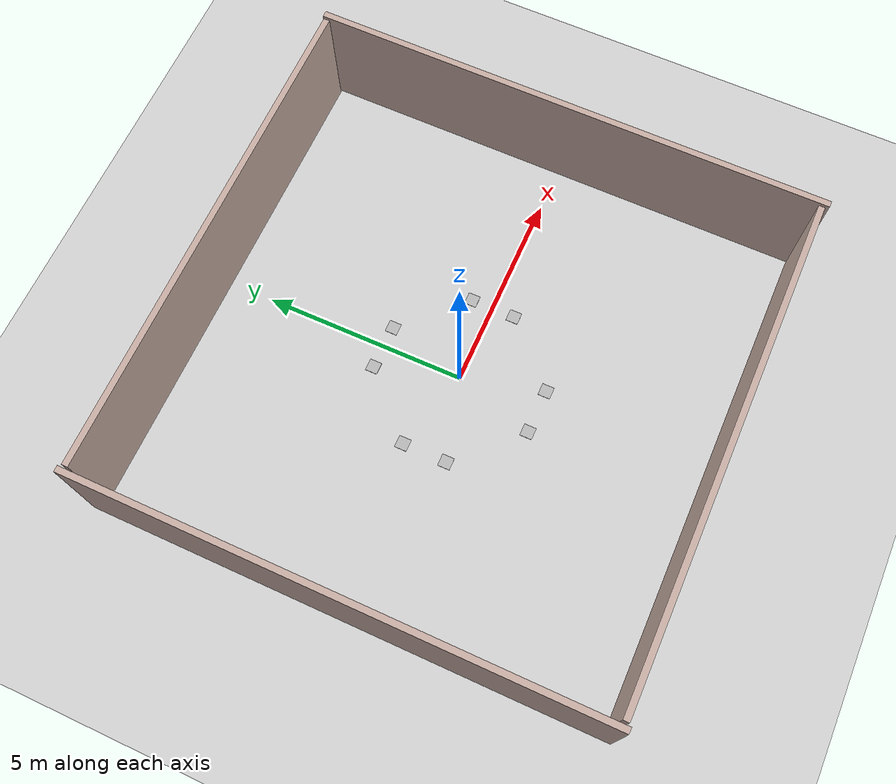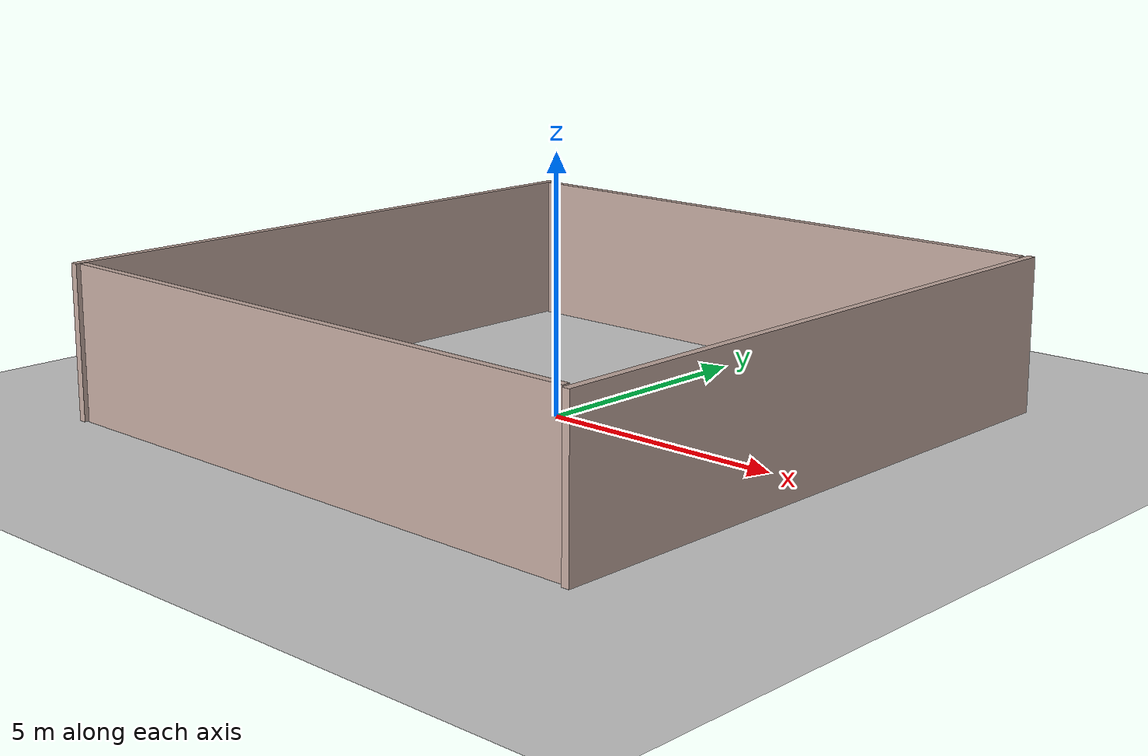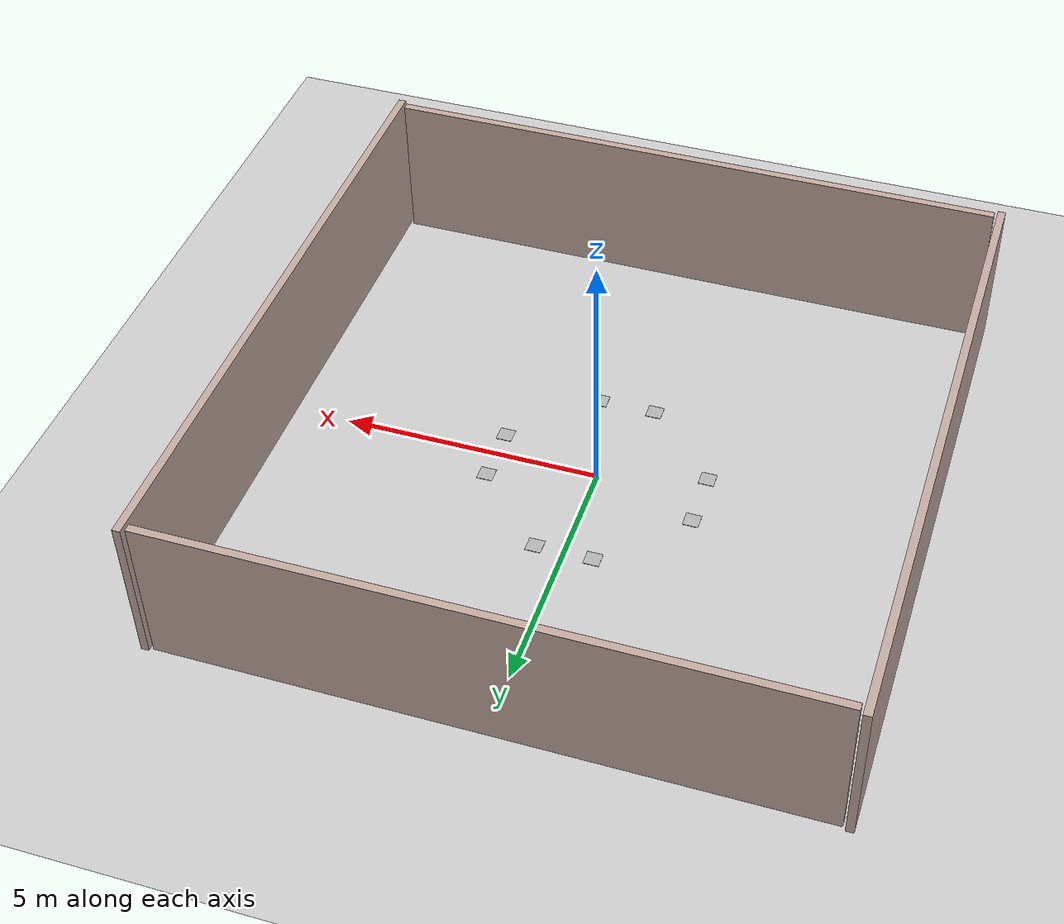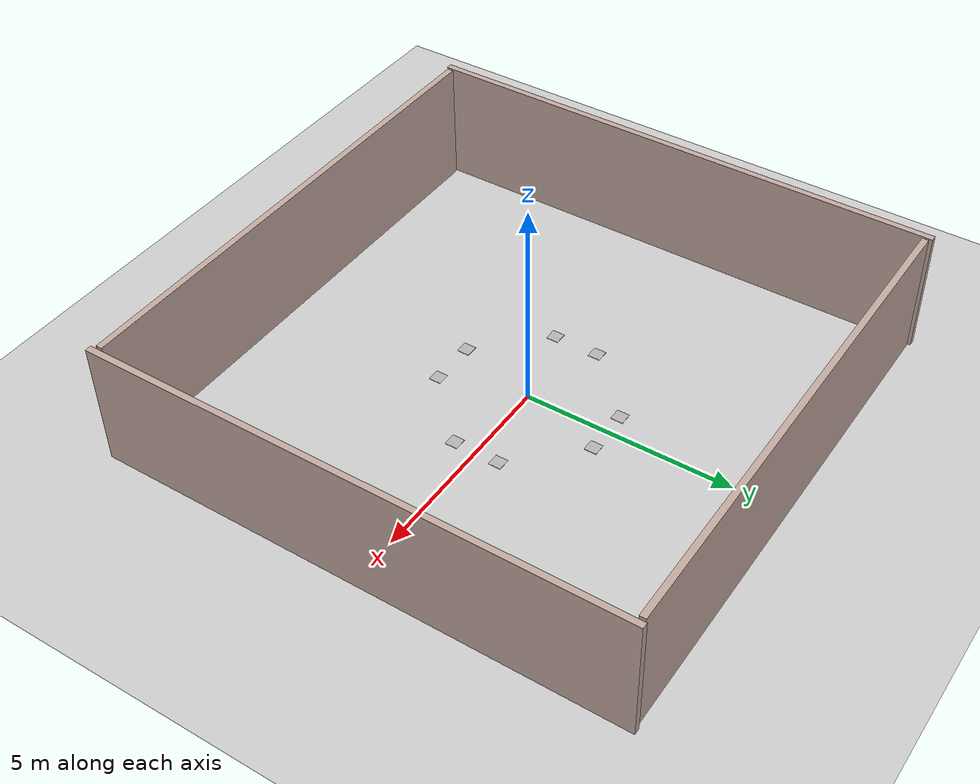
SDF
<sdf version="1.6">
 <world name="default">
  <include><uri>model://ApriltagID60</uri><pose>2 -0.55 0 0 1.5713 1.5713</pose></include>
  <include><uri>model://ApriltagID61</uri><pose>2 0.55 0 0 1.5713 1.5713</pose></include>
  <include><uri>model://ApriltagID62</uri><pose>0.55 2 0 0 1.5713 1.5713</pose></include>
  <include><uri>model://ApriltagID63</uri><pose>-0.55 2 0 0 1.5713 1.5713</pose></include>
  <include><uri>model://ApriltagID64</uri><pose>-2 0.55 0 0 1.5713 1.5713</pose></include>
  <include><uri>model://ApriltagID65</uri><pose>-2 -0.55 0 0 1.5713 1.5713</pose></include>
  <include><uri>model://ApriltagID66</uri><pose>-0.55 -2 0 0 1.5713 1.5713</pose></include>
  <include><uri>model://ApriltagID67</uri><pose>0.55 -2 0 0 1.5713 1.5713</pose></include>
  <plugin name="ros_interface_plugin" filename="librotors_gazebo_ros_interface_plugin.so"/>
  <spherical_coordinates>
   <surface_model>EARTH_WGS84</surface_model>
   <latitude_deg>47.3667</latitude_deg>
   <longitude_deg>8.5500</longitude_deg>
   <elevation>500.0</elevation>
   <heading_deg>0</heading_deg>
  </spherical_coordinates>
  <physics type="ode">
   <ode>
    <solver><type>quick</type><iters>1000</iters><sor>1.3</sor></solver>
    <constraints>
     <cfm>0</cfm>
     <erp>0.2</erp>
     <contact_max_correcting_vel>100</contact_max_correcting_vel>
     <contact_surface_layer>0.001</contact_surface_layer>
    </constraints>
   </ode>
   <max_step_size>0.01</max_step_size>
   <real_time_factor>1</real_time_factor>
   <real_time_update_rate>100</real_time_update_rate>
   <gravity>0 0 -9.8</gravity>
  </physics>
  <light name="sun" type="directional">
   <pose>0 0 15 0 -0 0</pose>
   <diffuse>0.8 0.8 0.8 1</diffuse>
   <specular>0.2 0.2 0.2 1</specular>
   <attenuation>
    <range>1000</range>
    <constant>0.9</constant>
    <linear>0.01</linear>
    <quadratic>0.001</quadratic>
   </attenuation>
   <direction>0.01 0.01 -0.9</direction>
  </light>
  <model name="ground_plane">
   <static>1</static>
   <link name="link">
    <collision name="collision">
     <geometry><plane><normal>0 0 1</normal><size>100 100</size></plane></geometry>
     <surface>
      <contact><collide_bitmask>65535</collide_bitmask></contact>
      <friction><ode><mu>100</mu><mu2>50</mu2></ode></friction>
     </surface>
    </collision>
    <visual name="visual">
     <cast_shadows>0</cast_shadows>
     <geometry><plane><normal>0 0 1</normal><size>100 100</size></plane></geometry>
     <material>
      <script><uri>file://media/materials/scripts/gazebo.material</uri><name>Gazebo/Grey</name></script>
     </material>
    </visual>
   </link>
  </model>
  <gravity>0 0 -9.8</gravity>
  <magnetic_field>6e-06 2.3e-05 -4.2e-05</magnetic_field>
  <atmosphere type="adiabatic"/>
  <physics name="default_physics" default="0" type="ode">
   <max_step_size>0.001</max_step_size>
   <real_time_factor>1</real_time_factor>
   <real_time_update_rate>1000</real_time_update_rate>
  </physics>
  <scene><ambient>0.4 0.4 0.4 1</ambient><background>0.7 0.7 0.7 1</background><shadows>1</shadows></scene>
  <audio><device>default</device></audio>
  <spherical_coordinates>
   <surface_model>EARTH_WGS84</surface_model>
   <latitude_deg>0</latitude_deg>
   <longitude_deg>0</longitude_deg>
   <elevation>0</elevation>
   <heading_deg>0</heading_deg>
  </spherical_coordinates>
  <model name="Room1">
   <pose>0.001 0.001 0 0 -0 0</pose>
   <link name="Wall_5">
    <collision name="Wall_5_Collision">
     <geometry><box><size>12.1 0.15 3</size></box></geometry>
     <pose>0 0 1.5 0 -0 0</pose>
    </collision>
    <visual name="Wall_5_Visual">
     <pose>0 0 1.5 0 -0 0</pose>
     <geometry><box><size>12.1 0.15 3</size></box></geometry>
     <material>
      <script><uri>file://media/materials/scripts/gazebo.material</uri><name>Gazebo/Grey</name></script>
      <ambient>0.760784 0.662745 0.627451 1</ambient>
     </material>
     <meta><layer>0</layer></meta>
    </visual>
    <pose>-0.005 6.18 0 0 -0 -0.001065</pose>
   </link>
   <link name="Wall_6">
    <collision name="Wall_6_Collision">
     <geometry><box><size>12.64 0.15 3</size></box></geometry>
     <pose>0 0 1.5 0 -0 0</pose>
    </collision>
    <visual name="Wall_6_Visual">
     <pose>0 0 1.5 0 -0 0</pose>
     <geometry><box><size>12.64 0.15 3</size></box></geometry>
     <material>
      <script><uri>file://media/materials/scripts/gazebo.material</uri><name>Gazebo/Grey</name></script>
      <ambient>0.760784 0.662745 0.627451 1</ambient>
     </material>
     <meta><layer>0</layer></meta>
    </visual>
    <pose>6.18 -0.021509 0 0 -0 -1.57071</pose>
   </link>
   <link name="Wall_7">
    <collision name="Wall_7_Collision">
     <geometry><box><size>12.1 0.15 3</size></box></geometry>
     <pose>0 0 1.5 0 -0 0</pose>
    </collision>
    <visual name="Wall_7_Visual">
     <pose>0 0 1.5 0 -0 0</pose>
     <geometry><box><size>12.1 0.15 3</size></box></geometry>
     <material>
      <script><uri>file://media/materials/scripts/gazebo.material</uri><name>Gazebo/Grey</name></script>
      <ambient>0.760784 0.662745 0.627451 1</ambient>
     </material>
     <meta><layer>0</layer></meta>
    </visual>
    <pose>-0.005 -6.18 0 0 -0 -3.14155</pose>
   </link>
   <link name="Wall_8">
    <collision name="Wall_8_Collision">
     <geometry><box><size>12.64 0.15 3</size></box></geometry>
     <pose>0 0 1.5 0 -0 0</pose>
    </collision>
    <visual name="Wall_8_Visual">
     <pose>0 0 1.5 0 -0 0</pose>
     <geometry><box><size>12.64 0.15 3</size></box></geometry>
     <material>
      <script><uri>file://media/materials/scripts/gazebo.material</uri><name>Gazebo/Grey</name></script>
      <ambient>0.760784 0.662745 0.627451 1</ambient>
     </material>
     <meta><layer>0</layer></meta>
    </visual>
    <pose>-6.18 0.006648 0 0 -0 1.57054</pose>
   </link>
   <static>1</static>
  </model>
 </world>
</sdf>
